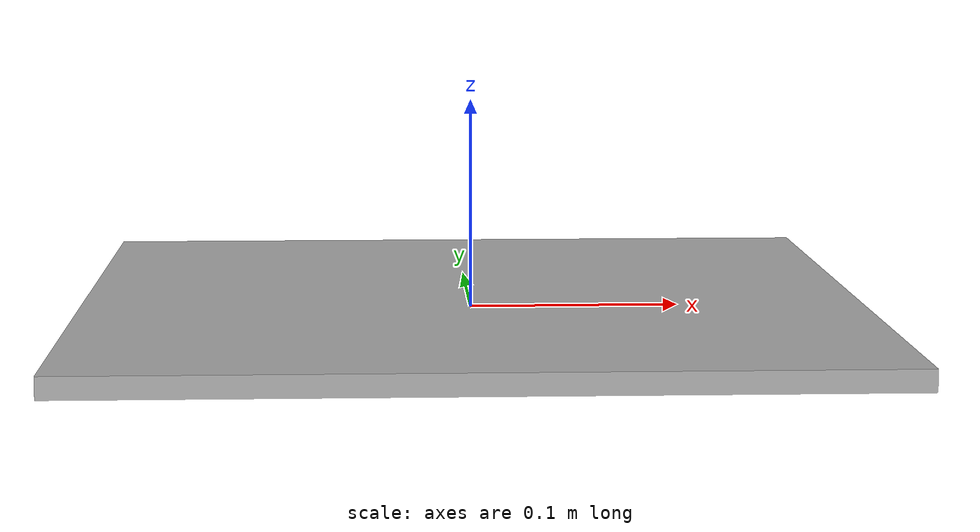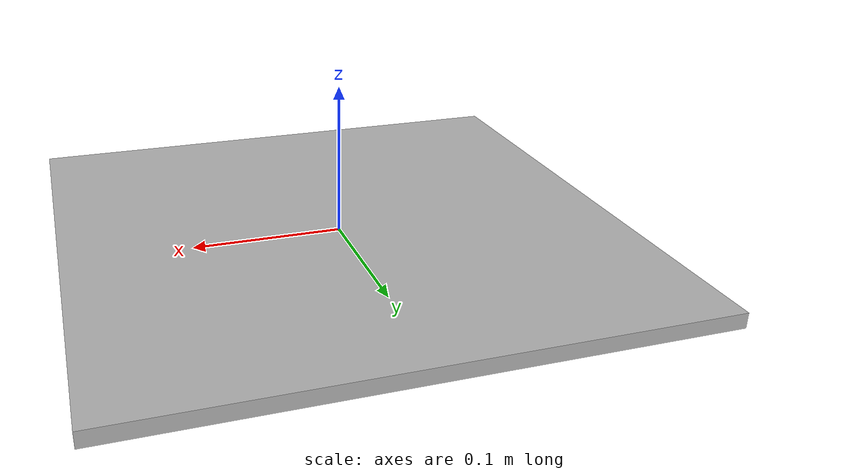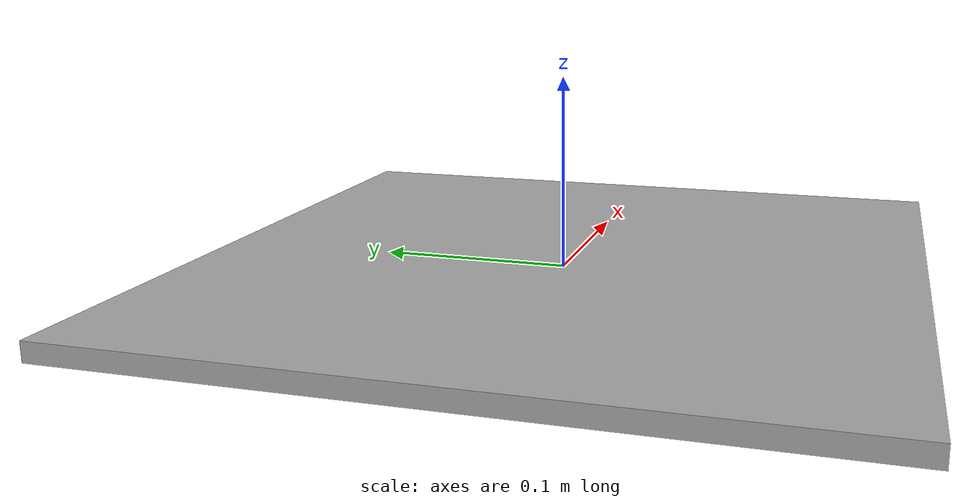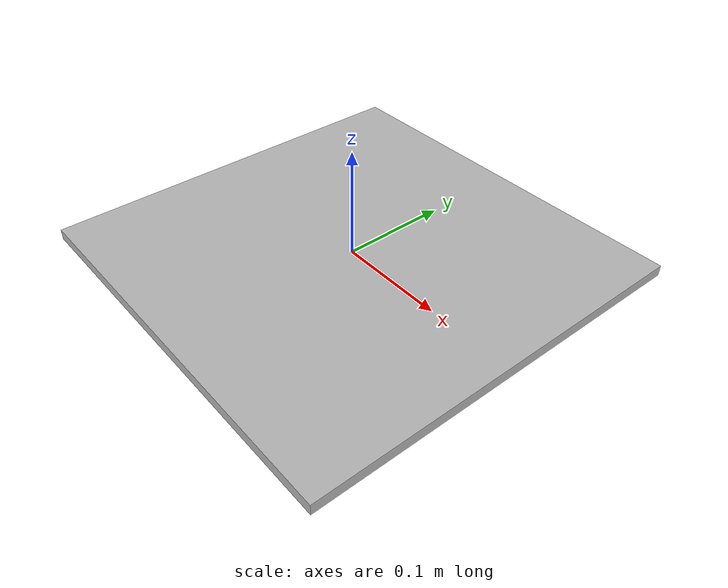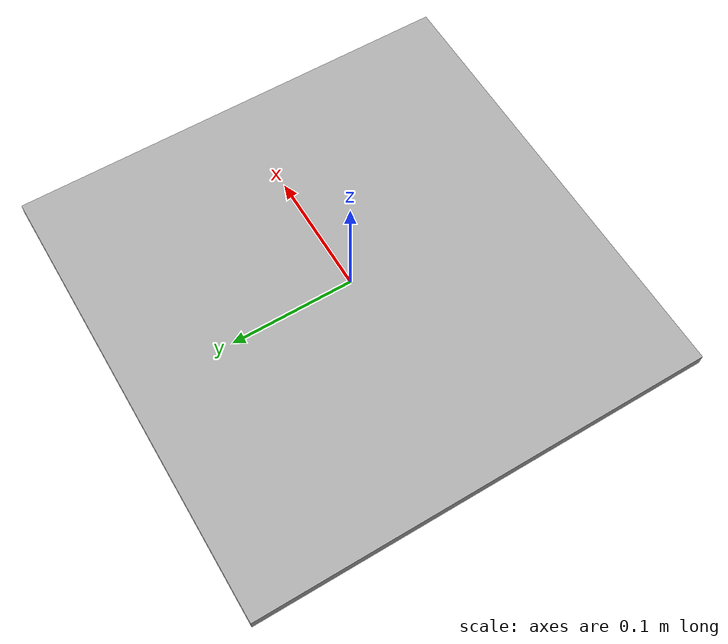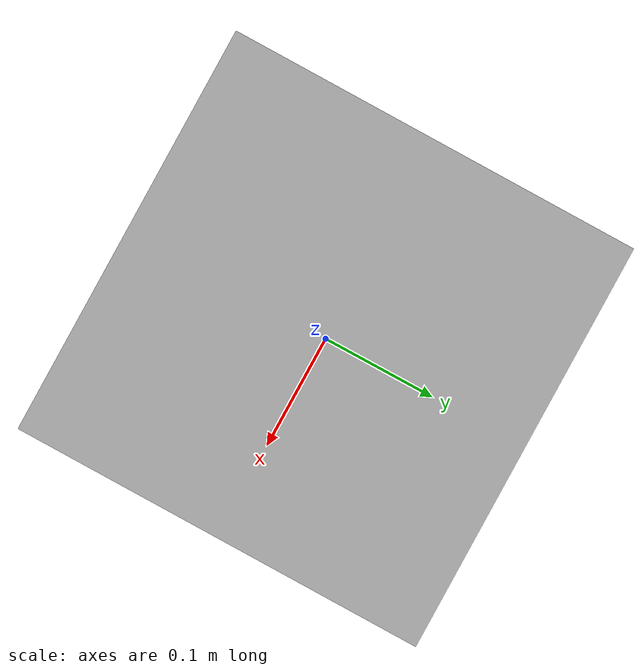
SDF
<?xml version="1.0" ?>
<sdf version="1.5">
  <model name="Tag36h11_0">
    <static>true</static>
    <link name="link">
      <collision name="collision">
        <geometry>
          <box>
            <size>0.3702 0.3702 0.01</size>
          </box>
        </geometry>
      </collision>
      <visual name="visual">
        <cast_shadows>false</cast_shadows>
        <geometry>
          <box>
            <size>0.3702 0.3702 0.01</size>
          </box>
        </geometry>
        <material>
          <script>
            <uri>model://Tag36h11_0/materials/scripts</uri>
            <uri>model://Tag36h11_0/materials/textures</uri>
            <name>Tag36h11_0</name>
          </script>
        </material>
      </visual>
    </link>
  </model>
</sdf>
